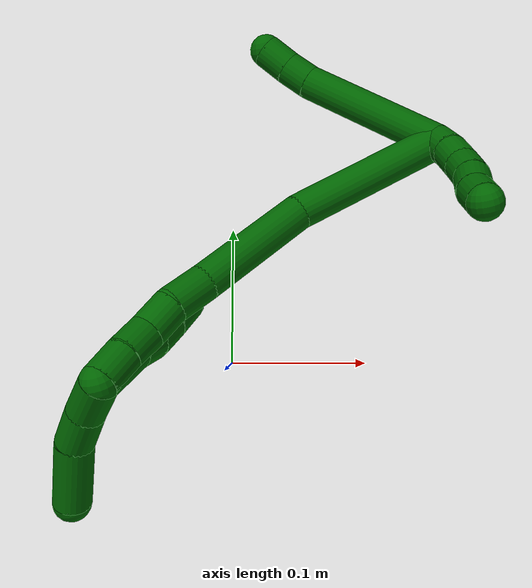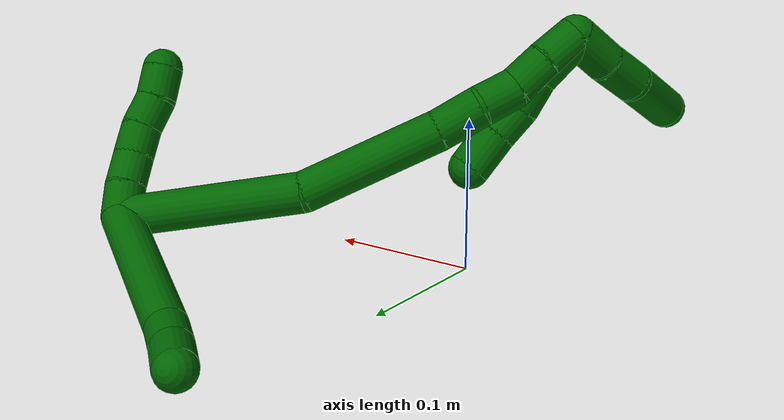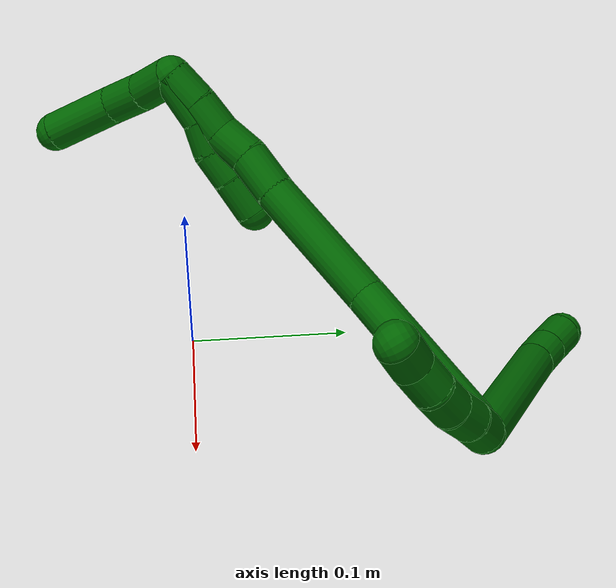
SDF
<sdf version="1.7">
 <world name="default">
  <model name="6">
   <static>0</static>
   <link name="6">
    <collision name="collision-cylinder-e_1_2_8">
     <pose>-0.045663 0.010166 0.026984 -0.360291 -1.00756 0.200105</pose>
     <geometry><cylinder><radius>0.0125</radius><length>0.108011</length></cylinder></geometry>
     <surface>
      <friction><ode><mu>1.16</mu><mu2>1.16</mu2><slip1>0</slip1><slip2>0</slip2></ode></friction>
      <contact><ode><kp>1e+06</kp><kd>1</kd><max_vel>0</max_vel><min_depth>0.001</min_depth></ode></contact>
     </surface>
    </collision>
    <visual name="visual-cylinder-e_1_2_8">
     <pose>-0.045663 0.010166 0.026984 -0.360291 -1.00756 0.200105</pose>
     <geometry><cylinder><radius>0.0125</radius><length>0.108011</length></cylinder></geometry>
     <material><ambient>0 0.392157 0.003922 1</ambient></material>
    </visual>
    <collision name="collision-cylinder-e_2_8_9">
     <pose>-0.098868 0.021739 0.060472 -0.213063 -0.847689 0.096423</pose>
     <geometry><cylinder><radius>0.0125</radius><length>0.020116</length></cylinder></geometry>
     <surface>
      <friction><ode><mu>1.16</mu><mu2>1.16</mu2><slip1>0</slip1><slip2>0</slip2></ode></friction>
      <contact><ode><kp>1e+06</kp><kd>1</kd><max_vel>0</max_vel><min_depth>0.001</min_depth></ode></contact>
     </surface>
    </collision>
    <visual name="visual-cylinder-e_2_8_9">
     <pose>-0.098868 0.021739 0.060472 -0.213063 -0.847689 0.096423</pose>
     <geometry><cylinder><radius>0.0125</radius><length>0.020116</length></cylinder></geometry>
     <material><ambient>0 0.392157 0.003922 1</ambient></material>
    </visual>
    <collision name="collision-cylinder-e_3_9_6">
     <pose>-0.11407 0.024546 0.074655 -0.180334 -0.776182 0.073892</pose>
     <geometry><cylinder><radius>0.0125</radius><length>0.021873</length></cylinder></geometry>
     <surface>
      <friction><ode><mu>1.16</mu><mu2>1.16</mu2><slip1>0</slip1><slip2>0</slip2></ode></friction>
      <contact><ode><kp>1e+06</kp><kd>1</kd><max_vel>0</max_vel><min_depth>0.001</min_depth></ode></contact>
     </surface>
    </collision>
    <visual name="visual-cylinder-e_3_9_6">
     <pose>-0.11407 0.024546 0.074655 -0.180334 -0.776182 0.073892</pose>
     <geometry><cylinder><radius>0.0125</radius><length>0.021873</length></cylinder></geometry>
     <material><ambient>0 0.392157 0.003922 1</ambient></material>
    </visual>
    <collision name="collision-cylinder-e_1_2_10">
     <pose>0.005779 -0.007888 -0.002092 1.83001 0.616188 0.784377</pose>
     <geometry><cylinder><radius>0.0125</radius><length>0.02</length></cylinder></geometry>
     <surface>
      <friction><ode><mu>1.16</mu><mu2>1.16</mu2><slip1>0</slip1><slip2>0</slip2></ode></friction>
      <contact><ode><kp>1e+06</kp><kd>1</kd><max_vel>0</max_vel><min_depth>0.001</min_depth></ode></contact>
     </surface>
    </collision>
    <visual name="visual-cylinder-e_1_2_10">
     <pose>0.005779 -0.007888 -0.002092 1.83001 0.616188 0.784377</pose>
     <geometry><cylinder><radius>0.0125</radius><length>0.02</length></cylinder></geometry>
     <material><ambient>0 0.392157 0.003922 1</ambient></material>
    </visual>
    <collision name="collision-cylinder-e_2_10_11">
     <pose>0.016498 -0.023916 -0.007243 1.9303 0.516591 0.728976</pose>
     <geometry><cylinder><radius>0.0125</radius><length>0.02</length></cylinder></geometry>
     <surface>
      <friction><ode><mu>1.16</mu><mu2>1.16</mu2><slip1>0</slip1><slip2>0</slip2></ode></friction>
      <contact><ode><kp>1e+06</kp><kd>1</kd><max_vel>0</max_vel><min_depth>0.001</min_depth></ode></contact>
     </surface>
    </collision>
    <visual name="visual-cylinder-e_2_10_11">
     <pose>0.016498 -0.023916 -0.007243 1.9303 0.516591 0.728976</pose>
     <geometry><cylinder><radius>0.0125</radius><length>0.02</length></cylinder></geometry>
     <material><ambient>0 0.392157 0.003922 1</ambient></material>
    </visual>
    <collision name="collision-cylinder-e_3_11_12">
     <pose>0.025632 -0.040943 -0.012149 1.7757 0.432845 0.5279</pose>
     <geometry><cylinder><radius>0.0125</radius><length>0.02</length></cylinder></geometry>
     <surface>
      <friction><ode><mu>1.16</mu><mu2>1.16</mu2><slip1>0</slip1><slip2>0</slip2></ode></friction>
      <contact><ode><kp>1e+06</kp><kd>1</kd><max_vel>0</max_vel><min_depth>0.001</min_depth></ode></contact>
     </surface>
    </collision>
    <visual name="visual-cylinder-e_3_11_12">
     <pose>0.025632 -0.040943 -0.012149 1.7757 0.432845 0.5279</pose>
     <geometry><cylinder><radius>0.0125</radius><length>0.02</length></cylinder></geometry>
     <material><ambient>0 0.392157 0.003922 1</ambient></material>
    </visual>
    <collision name="collision-cylinder-e_4_12_13">
     <pose>0.031901 -0.059461 -0.015716 1.74761 0.208985 0.24925</pose>
     <geometry><cylinder><radius>0.0125</radius><length>0.02</length></cylinder></geometry>
     <surface>
      <friction><ode><mu>1.16</mu><mu2>1.16</mu2><slip1>0</slip1><slip2>0</slip2></ode></friction>
      <contact><ode><kp>1e+06</kp><kd>1</kd><max_vel>0</max_vel><min_depth>0.001</min_depth></ode></contact>
     </surface>
    </collision>
    <visual name="visual-cylinder-e_4_12_13">
     <pose>0.031901 -0.059461 -0.015716 1.74761 0.208985 0.24925</pose>
     <geometry><cylinder><radius>0.0125</radius><length>0.02</length></cylinder></geometry>
     <material><ambient>0 0.392157 0.003922 1</ambient></material>
    </visual>
    <collision name="collision-cylinder-e_5_13_5">
     <pose>0.038191 -0.078113 -0.018345 1.67113 0.435181 0.479528</pose>
     <geometry><cylinder><radius>0.0125</radius><length>0.02</length></cylinder></geometry>
     <surface>
      <friction><ode><mu>1.16</mu><mu2>1.16</mu2><slip1>0</slip1><slip2>0</slip2></ode></friction>
      <contact><ode><kp>1e+06</kp><kd>1</kd><max_vel>0</max_vel><min_depth>0.001</min_depth></ode></contact>
     </surface>
    </collision>
    <visual name="visual-cylinder-e_5_13_5">
     <pose>0.038191 -0.078113 -0.018345 1.67113 0.435181 0.479528</pose>
     <geometry><cylinder><radius>0.0125</radius><length>0.02</length></cylinder></geometry>
     <material><ambient>0 0.392157 0.003922 1</ambient></material>
    </visual>
    <collision name="collision-cylinder-e_1_2_14">
     <pose>-0.043155 -0.036799 -0.008079 1.78691 -0.853094 -1.02864</pose>
     <geometry><cylinder><radius>0.0125</radius><length>0.114574</length></cylinder></geometry>
     <surface>
      <friction><ode><mu>1.16</mu><mu2>1.16</mu2><slip1>0</slip1><slip2>0</slip2></ode></friction>
      <contact><ode><kp>1e+06</kp><kd>1</kd><max_vel>0</max_vel><min_depth>0.001</min_depth></ode></contact>
     </surface>
    </collision>
    <visual name="visual-cylinder-e_1_2_14">
     <pose>-0.043155 -0.036799 -0.008079 1.78691 -0.853094 -1.02864</pose>
     <geometry><cylinder><radius>0.0125</radius><length>0.114574</length></cylinder></geometry>
     <material><ambient>0 0.392157 0.003922 1</ambient></material>
    </visual>
    <collision name="collision-cylinder-e_2_14_15">
     <pose>-0.108742 -0.110054 -0.024101 1.78531 -0.541287 -0.663369</pose>
     <geometry><cylinder><radius>0.0125</radius><length>0.087072</length></cylinder></geometry>
     <surface>
      <friction><ode><mu>1.16</mu><mu2>1.16</mu2><slip1>0</slip1><slip2>0</slip2></ode></friction>
      <contact><ode><kp>1e+06</kp><kd>1</kd><max_vel>0</max_vel><min_depth>0.001</min_depth></ode></contact>
     </surface>
    </collision>
    <visual name="visual-cylinder-e_2_14_15">
     <pose>-0.108742 -0.110054 -0.024101 1.78531 -0.541287 -0.663369</pose>
     <geometry><cylinder><radius>0.0125</radius><length>0.087072</length></cylinder></geometry>
     <material><ambient>0 0.392157 0.003922 1</ambient></material>
    </visual>
    <collision name="collision-cylinder-e_3_15_16">
     <pose>-0.137577 -0.159006 -0.033606 1.69517 -0.470461 -0.530213</pose>
     <geometry><cylinder><radius>0.0125</radius><length>0.028252</length></cylinder></geometry>
     <surface>
      <friction><ode><mu>1.16</mu><mu2>1.16</mu2><slip1>0</slip1><slip2>0</slip2></ode></friction>
      <contact><ode><kp>1e+06</kp><kd>1</kd><max_vel>0</max_vel><min_depth>0.001</min_depth></ode></contact>
     </surface>
    </collision>
    <visual name="visual-cylinder-e_3_15_16">
     <pose>-0.137577 -0.159006 -0.033606 1.69517 -0.470461 -0.530213</pose>
     <geometry><cylinder><radius>0.0125</radius><length>0.028252</length></cylinder></geometry>
     <material><ambient>0 0.392157 0.003922 1</ambient></material>
    </visual>
    <collision name="collision-cylinder-e_4_16_17">
     <pose>-0.148854 -0.181462 -0.038996 1.93768 -0.428351 -0.613239</pose>
     <geometry><cylinder><radius>0.0125</radius><length>0.023464</length></cylinder></geometry>
     <surface>
      <friction><ode><mu>1.16</mu><mu2>1.16</mu2><slip1>0</slip1><slip2>0</slip2></ode></friction>
      <contact><ode><kp>1e+06</kp><kd>1</kd><max_vel>0</max_vel><min_depth>0.001</min_depth></ode></contact>
     </surface>
    </collision>
    <visual name="visual-cylinder-e_4_16_17">
     <pose>-0.148854 -0.181462 -0.038996 1.93768 -0.428351 -0.613239</pose>
     <geometry><cylinder><radius>0.0125</radius><length>0.023464</length></cylinder></geometry>
     <material><ambient>0 0.392157 0.003922 1</ambient></material>
    </visual>
    <collision name="collision-cylinder-e_5_17_18">
     <pose>-0.156288 -0.202502 -0.044436 1.71529 -0.224893 -0.259617</pose>
     <geometry><cylinder><radius>0.0125</radius><length>0.022968</length></cylinder></geometry>
     <surface>
      <friction><ode><mu>1.16</mu><mu2>1.16</mu2><slip1>0</slip1><slip2>0</slip2></ode></friction>
      <contact><ode><kp>1e+06</kp><kd>1</kd><max_vel>0</max_vel><min_depth>0.001</min_depth></ode></contact>
     </surface>
    </collision>
    <visual name="visual-cylinder-e_5_17_18">
     <pose>-0.156288 -0.202502 -0.044436 1.71529 -0.224893 -0.259617</pose>
     <geometry><cylinder><radius>0.0125</radius><length>0.022968</length></cylinder></geometry>
     <material><ambient>0 0.392157 0.003922 1</ambient></material>
    </visual>
    <collision name="collision-cylinder-e_6_18_1">
     <pose>-0.161758 -0.22474 -0.048706 1.80459 -0.24838 -0.31351</pose>
     <geometry><cylinder><radius>0.0125</radius><length>0.023669</length></cylinder></geometry>
     <surface>
      <friction><ode><mu>1.16</mu><mu2>1.16</mu2><slip1>0</slip1><slip2>0</slip2></ode></friction>
      <contact><ode><kp>1e+06</kp><kd>1</kd><max_vel>0</max_vel><min_depth>0.001</min_depth></ode></contact>
     </surface>
    </collision>
    <visual name="visual-cylinder-e_6_18_1">
     <pose>-0.161758 -0.22474 -0.048706 1.80459 -0.24838 -0.31351</pose>
     <geometry><cylinder><radius>0.0125</radius><length>0.023669</length></cylinder></geometry>
     <material><ambient>0 0.392157 0.003922 1</ambient></material>
    </visual>
    <collision name="collision-cylinder-e_1_1_19">
     <pose>-0.173723 -0.234971 -0.061615 -3.05129 -0.72148 2.9032</pose>
     <geometry><cylinder><radius>0.0125</radius><length>0.027421</length></cylinder></geometry>
     <surface>
      <friction><ode><mu>1.16</mu><mu2>1.16</mu2><slip1>0</slip1><slip2>0</slip2></ode></friction>
      <contact><ode><kp>1e+06</kp><kd>1</kd><max_vel>0</max_vel><min_depth>0.001</min_depth></ode></contact>
     </surface>
    </collision>
    <visual name="visual-cylinder-e_1_1_19">
     <pose>-0.173723 -0.234971 -0.061615 -3.05129 -0.72148 2.9032</pose>
     <geometry><cylinder><radius>0.0125</radius><length>0.027421</length></cylinder></geometry>
     <material><ambient>0 0.392157 0.003922 1</ambient></material>
    </visual>
    <collision name="collision-cylinder-e_2_19_20">
     <pose>-0.190699 -0.234249 -0.082507 3.12221 -0.639853 -3.0831</pose>
     <geometry><cylinder><radius>0.0125</radius><length>0.026531</length></cylinder></geometry>
     <surface>
      <friction><ode><mu>1.16</mu><mu2>1.16</mu2><slip1>0</slip1><slip2>0</slip2></ode></friction>
      <contact><ode><kp>1e+06</kp><kd>1</kd><max_vel>0</max_vel><min_depth>0.001</min_depth></ode></contact>
     </surface>
    </collision>
    <visual name="visual-cylinder-e_2_19_20">
     <pose>-0.190699 -0.234249 -0.082507 3.12221 -0.639853 -3.0831</pose>
     <geometry><cylinder><radius>0.0125</radius><length>0.026531</length></cylinder></geometry>
     <material><ambient>0 0.392157 0.003922 1</ambient></material>
    </visual>
    <collision name="collision-cylinder-e_3_20_4">
     <pose>-0.206924 -0.235253 -0.114606 3.10441 -0.368994 -2.943</pose>
     <geometry><cylinder><radius>0.0125</radius><length>0.046049</length></cylinder></geometry>
     <surface>
      <friction><ode><mu>1.16</mu><mu2>1.16</mu2><slip1>0</slip1><slip2>0</slip2></ode></friction>
      <contact><ode><kp>1e+06</kp><kd>1</kd><max_vel>0</max_vel><min_depth>0.001</min_depth></ode></contact>
     </surface>
    </collision>
    <visual name="visual-cylinder-e_3_20_4">
     <pose>-0.206924 -0.235253 -0.114606 3.10441 -0.368994 -2.943</pose>
     <geometry><cylinder><radius>0.0125</radius><length>0.046049</length></cylinder></geometry>
     <material><ambient>0 0.392157 0.003922 1</ambient></material>
    </visual>
    <collision name="collision-cylinder-e_1_1_21">
     <pose>-0.161675 -0.219637 -0.050097 -1.49311 0.181445 -0.167935</pose>
     <geometry><cylinder><radius>0.0125</radius><length>0.033167</length></cylinder></geometry>
     <surface>
      <friction><ode><mu>1.16</mu><mu2>1.16</mu2><slip1>0</slip1><slip2>0</slip2></ode></friction>
      <contact><ode><kp>1e+06</kp><kd>1</kd><max_vel>0</max_vel><min_depth>0.001</min_depth></ode></contact>
     </surface>
    </collision>
    <visual name="visual-cylinder-e_1_1_21">
     <pose>-0.161675 -0.219637 -0.050097 -1.49311 0.181445 -0.167935</pose>
     <geometry><cylinder><radius>0.0125</radius><length>0.033167</length></cylinder></geometry>
     <material><ambient>0 0.392157 0.003922 1</ambient></material>
    </visual>
    <collision name="collision-cylinder-e_2_21_22">
     <pose>-0.158439 -0.193164 -0.050913 -1.77189 0.02336 -0.028602</pose>
     <geometry><cylinder><radius>0.0125</radius><length>0.020849</length></cylinder></geometry>
     <surface>
      <friction><ode><mu>1.16</mu><mu2>1.16</mu2><slip1>0</slip1><slip2>0</slip2></ode></friction>
      <contact><ode><kp>1e+06</kp><kd>1</kd><max_vel>0</max_vel><min_depth>0.001</min_depth></ode></contact>
     </surface>
    </collision>
    <visual name="visual-cylinder-e_2_21_22">
     <pose>-0.158439 -0.193164 -0.050913 -1.77189 0.02336 -0.028602</pose>
     <geometry><cylinder><radius>0.0125</radius><length>0.020849</length></cylinder></geometry>
     <material><ambient>0 0.392157 0.003922 1</ambient></material>
    </visual>
    <collision name="collision-cylinder-e_3_22_23">
     <pose>-0.156862 -0.172912 -0.052014 -1.47342 0.13142 -0.119238</pose>
     <geometry><cylinder><radius>0.0125</radius><length>0.020352</length></cylinder></geometry>
     <surface>
      <friction><ode><mu>1.16</mu><mu2>1.16</mu2><slip1>0</slip1><slip2>0</slip2></ode></friction>
      <contact><ode><kp>1e+06</kp><kd>1</kd><max_vel>0</max_vel><min_depth>0.001</min_depth></ode></contact>
     </surface>
    </collision>
    <visual name="visual-cylinder-e_3_22_23">
     <pose>-0.156862 -0.172912 -0.052014 -1.47342 0.13142 -0.119238</pose>
     <geometry><cylinder><radius>0.0125</radius><length>0.020352</length></cylinder></geometry>
     <material><ambient>0 0.392157 0.003922 1</ambient></material>
    </visual>
    <collision name="collision-cylinder-e_4_23_3">
     <pose>-0.154752 -0.150122 -0.049981 -1.48846 0.060605 -0.055812</pose>
     <geometry><cylinder><radius>0.0125</radius><length>0.025632</length></cylinder></geometry>
     <surface>
      <friction><ode><mu>1.16</mu><mu2>1.16</mu2><slip1>0</slip1><slip2>0</slip2></ode></friction>
      <contact><ode><kp>1e+06</kp><kd>1</kd><max_vel>0</max_vel><min_depth>0.001</min_depth></ode></contact>
     </surface>
    </collision>
    <visual name="visual-cylinder-e_4_23_3">
     <pose>-0.154752 -0.150122 -0.049981 -1.48846 0.060605 -0.055812</pose>
     <geometry><cylinder><radius>0.0125</radius><length>0.025632</length></cylinder></geometry>
     <material><ambient>0 0.392157 0.003922 1</ambient></material>
    </visual>
    <collision name="collision-sphere-3">
     <pose>-0.153976 -0.137373 -0.048929 0 -0 0</pose>
     <geometry><sphere><radius>0.0125</radius></sphere></geometry>
     <surface>
      <friction><ode><mu>1.16</mu><mu2>1.16</mu2><slip1>0</slip1><slip2>0</slip2></ode></friction>
      <contact><ode><kp>1e+06</kp><kd>1</kd><max_vel>0</max_vel><min_depth>0.001</min_depth></ode></contact>
     </surface>
    </collision>
    <visual name="visual-sphere-3">
     <pose>-0.153976 -0.137373 -0.048929 0 -0 0</pose>
     <geometry><sphere><radius>0.0125</radius></sphere></geometry>
     <material><ambient>0 0.392157 0.003922 1</ambient></material>
    </visual>
    <collision name="collision-sphere-23">
     <pose>-0.155529 -0.162871 -0.051033 0 -0 0</pose>
     <geometry><sphere><radius>0.0125</radius></sphere></geometry>
     <surface>
      <friction><ode><mu>1.16</mu><mu2>1.16</mu2><slip1>0</slip1><slip2>0</slip2></ode></friction>
      <contact><ode><kp>1e+06</kp><kd>1</kd><max_vel>0</max_vel><min_depth>0.001</min_depth></ode></contact>
     </surface>
    </collision>
    <visual name="visual-sphere-23">
     <pose>-0.155529 -0.162871 -0.051033 0 -0 0</pose>
     <geometry><sphere><radius>0.0125</radius></sphere></geometry>
     <material><ambient>0 0.392157 0.003922 1</ambient></material>
    </visual>
    <collision name="collision-sphere-22">
     <pose>-0.158195 -0.182952 -0.052995 0 -0 0</pose>
     <geometry><sphere><radius>0.0125</radius></sphere></geometry>
     <surface>
      <friction><ode><mu>1.16</mu><mu2>1.16</mu2><slip1>0</slip1><slip2>0</slip2></ode></friction>
      <contact><ode><kp>1e+06</kp><kd>1</kd><max_vel>0</max_vel><min_depth>0.001</min_depth></ode></contact>
     </surface>
    </collision>
    <visual name="visual-sphere-22">
     <pose>-0.158195 -0.182952 -0.052995 0 -0 0</pose>
     <geometry><sphere><radius>0.0125</radius></sphere></geometry>
     <material><ambient>0 0.392157 0.003922 1</ambient></material>
    </visual>
    <collision name="collision-sphere-21">
     <pose>-0.158682 -0.203375 -0.048831 0 -0 0</pose>
     <geometry><sphere><radius>0.0125</radius></sphere></geometry>
     <surface>
      <friction><ode><mu>1.16</mu><mu2>1.16</mu2><slip1>0</slip1><slip2>0</slip2></ode></friction>
      <contact><ode><kp>1e+06</kp><kd>1</kd><max_vel>0</max_vel><min_depth>0.001</min_depth></ode></contact>
     </surface>
    </collision>
    <visual name="visual-sphere-21">
     <pose>-0.158682 -0.203375 -0.048831 0 -0 0</pose>
     <geometry><sphere><radius>0.0125</radius></sphere></geometry>
     <material><ambient>0 0.392157 0.003922 1</ambient></material>
    </visual>
    <collision name="collision-sphere-4">
     <pose>-0.215228 -0.236052 -0.136065 0 -0 0</pose>
     <geometry><sphere><radius>0.0125</radius></sphere></geometry>
     <surface>
      <friction><ode><mu>1.16</mu><mu2>1.16</mu2><slip1>0</slip1><slip2>0</slip2></ode></friction>
      <contact><ode><kp>1e+06</kp><kd>1</kd><max_vel>0</max_vel><min_depth>0.001</min_depth></ode></contact>
     </surface>
    </collision>
    <visual name="visual-sphere-4">
     <pose>-0.215228 -0.236052 -0.136065 0 -0 0</pose>
     <geometry><sphere><radius>0.0125</radius></sphere></geometry>
     <material><ambient>0 0.392157 0.003922 1</ambient></material>
    </visual>
    <collision name="collision-sphere-20">
     <pose>-0.198619 -0.234455 -0.093146 0 -0 0</pose>
     <geometry><sphere><radius>0.0125</radius></sphere></geometry>
     <surface>
      <friction><ode><mu>1.16</mu><mu2>1.16</mu2><slip1>0</slip1><slip2>0</slip2></ode></friction>
      <contact><ode><kp>1e+06</kp><kd>1</kd><max_vel>0</max_vel><min_depth>0.001</min_depth></ode></contact>
     </surface>
    </collision>
    <visual name="visual-sphere-20">
     <pose>-0.198619 -0.234455 -0.093146 0 -0 0</pose>
     <geometry><sphere><radius>0.0125</radius></sphere></geometry>
     <material><ambient>0 0.392157 0.003922 1</ambient></material>
    </visual>
    <collision name="collision-sphere-11">
     <pose>0.021437 -0.032055 -0.010302 0 -0 0</pose>
     <geometry><sphere><radius>0.0125</radius></sphere></geometry>
     <surface>
      <friction><ode><mu>1.16</mu><mu2>1.16</mu2><slip1>0</slip1><slip2>0</slip2></ode></friction>
      <contact><ode><kp>1e+06</kp><kd>1</kd><max_vel>0</max_vel><min_depth>0.001</min_depth></ode></contact>
     </surface>
    </collision>
    <visual name="visual-sphere-11">
     <pose>0.021437 -0.032055 -0.010302 0 -0 0</pose>
     <geometry><sphere><radius>0.0125</radius></sphere></geometry>
     <material><ambient>0 0.392157 0.003922 1</ambient></material>
    </visual>
    <collision name="collision-sphere-10">
     <pose>0.011559 -0.015776 -0.004184 0 -0 0</pose>
     <geometry><sphere><radius>0.0125</radius></sphere></geometry>
     <surface>
      <friction><ode><mu>1.16</mu><mu2>1.16</mu2><slip1>0</slip1><slip2>0</slip2></ode></friction>
      <contact><ode><kp>1e+06</kp><kd>1</kd><max_vel>0</max_vel><min_depth>0.001</min_depth></ode></contact>
     </surface>
    </collision>
    <visual name="visual-sphere-10">
     <pose>0.011559 -0.015776 -0.004184 0 -0 0</pose>
     <geometry><sphere><radius>0.0125</radius></sphere></geometry>
     <material><ambient>0 0.392157 0.003922 1</ambient></material>
    </visual>
    <collision name="collision-sphere-6">
     <pose>-0.121732 0.025946 0.082333 0 -0 0</pose>
     <geometry><sphere><radius>0.0125</radius></sphere></geometry>
     <surface>
      <friction><ode><mu>1.16</mu><mu2>1.16</mu2><slip1>0</slip1><slip2>0</slip2></ode></friction>
      <contact><ode><kp>1e+06</kp><kd>1</kd><max_vel>0</max_vel><min_depth>0.001</min_depth></ode></contact>
     </surface>
    </collision>
    <visual name="visual-sphere-6">
     <pose>-0.121732 0.025946 0.082333 0 -0 0</pose>
     <geometry><sphere><radius>0.0125</radius></sphere></geometry>
     <material><ambient>0 0.392157 0.003922 1</ambient></material>
    </visual>
    <collision name="collision-sphere-9">
     <pose>-0.106408 0.023146 0.066977 0 -0 0</pose>
     <geometry><sphere><radius>0.0125</radius></sphere></geometry>
     <surface>
      <friction><ode><mu>1.16</mu><mu2>1.16</mu2><slip1>0</slip1><slip2>0</slip2></ode></friction>
      <contact><ode><kp>1e+06</kp><kd>1</kd><max_vel>0</max_vel><min_depth>0.001</min_depth></ode></contact>
     </surface>
    </collision>
    <visual name="visual-sphere-9">
     <pose>-0.106408 0.023146 0.066977 0 -0 0</pose>
     <geometry><sphere><radius>0.0125</radius></sphere></geometry>
     <material><ambient>0 0.392157 0.003922 1</ambient></material>
    </visual>
    <collision name="collision-sphere-2">
     <geometry><sphere><radius>0.0125</radius></sphere></geometry>
     <surface>
      <friction><ode><mu>1.16</mu><mu2>1.16</mu2><slip1>0</slip1><slip2>0</slip2></ode></friction>
      <contact><ode><kp>1e+06</kp><kd>1</kd><max_vel>0</max_vel><min_depth>0.001</min_depth></ode></contact>
     </surface>
    </collision>
    <visual name="visual-sphere-2">
     <geometry><sphere><radius>0.0125</radius></sphere></geometry>
     <material><ambient>0 0.392157 0.003922 1</ambient></material>
    </visual>
    <collision name="collision-sphere-19">
     <pose>-0.182779 -0.234043 -0.071867 0 -0 0</pose>
     <geometry><sphere><radius>0.0125</radius></sphere></geometry>
     <surface>
      <friction><ode><mu>1.16</mu><mu2>1.16</mu2><slip1>0</slip1><slip2>0</slip2></ode></friction>
      <contact><ode><kp>1e+06</kp><kd>1</kd><max_vel>0</max_vel><min_depth>0.001</min_depth></ode></contact>
     </surface>
    </collision>
    <visual name="visual-sphere-19">
     <pose>-0.182779 -0.234043 -0.071867 0 -0 0</pose>
     <geometry><sphere><radius>0.0125</radius></sphere></geometry>
     <material><ambient>0 0.392157 0.003922 1</ambient></material>
    </visual>
    <collision name="collision-sphere-8">
     <pose>-0.091327 0.020332 0.053968 0 -0 0</pose>
     <geometry><sphere><radius>0.0125</radius></sphere></geometry>
     <surface>
      <friction><ode><mu>1.16</mu><mu2>1.16</mu2><slip1>0</slip1><slip2>0</slip2></ode></friction>
      <contact><ode><kp>1e+06</kp><kd>1</kd><max_vel>0</max_vel><min_depth>0.001</min_depth></ode></contact>
     </surface>
    </collision>
    <visual name="visual-sphere-8">
     <pose>-0.091327 0.020332 0.053968 0 -0 0</pose>
     <geometry><sphere><radius>0.0125</radius></sphere></geometry>
     <material><ambient>0 0.392157 0.003922 1</ambient></material>
    </visual>
    <collision name="collision-sphere-12">
     <pose>0.029826 -0.049831 -0.013996 0 -0 0</pose>
     <geometry><sphere><radius>0.0125</radius></sphere></geometry>
     <surface>
      <friction><ode><mu>1.16</mu><mu2>1.16</mu2><slip1>0</slip1><slip2>0</slip2></ode></friction>
      <contact><ode><kp>1e+06</kp><kd>1</kd><max_vel>0</max_vel><min_depth>0.001</min_depth></ode></contact>
     </surface>
    </collision>
    <visual name="visual-sphere-12">
     <pose>0.029826 -0.049831 -0.013996 0 -0 0</pose>
     <geometry><sphere><radius>0.0125</radius></sphere></geometry>
     <material><ambient>0 0.392157 0.003922 1</ambient></material>
    </visual>
    <collision name="collision-sphere-13">
     <pose>0.033975 -0.06909 -0.017437 0 -0 0</pose>
     <geometry><sphere><radius>0.0125</radius></sphere></geometry>
     <surface>
      <friction><ode><mu>1.16</mu><mu2>1.16</mu2><slip1>0</slip1><slip2>0</slip2></ode></friction>
      <contact><ode><kp>1e+06</kp><kd>1</kd><max_vel>0</max_vel><min_depth>0.001</min_depth></ode></contact>
     </surface>
    </collision>
    <visual name="visual-sphere-13">
     <pose>0.033975 -0.06909 -0.017437 0 -0 0</pose>
     <geometry><sphere><radius>0.0125</radius></sphere></geometry>
     <material><ambient>0 0.392157 0.003922 1</ambient></material>
    </visual>
    <collision name="collision-sphere-5">
     <pose>0.042407 -0.087135 -0.019254 0 -0 0</pose>
     <geometry><sphere><radius>0.0125</radius></sphere></geometry>
     <surface>
      <friction><ode><mu>1.16</mu><mu2>1.16</mu2><slip1>0</slip1><slip2>0</slip2></ode></friction>
      <contact><ode><kp>1e+06</kp><kd>1</kd><max_vel>0</max_vel><min_depth>0.001</min_depth></ode></contact>
     </surface>
    </collision>
    <visual name="visual-sphere-5">
     <pose>0.042407 -0.087135 -0.019254 0 -0 0</pose>
     <geometry><sphere><radius>0.0125</radius></sphere></geometry>
     <material><ambient>0 0.392157 0.003922 1</ambient></material>
    </visual>
    <collision name="collision-sphere-14">
     <pose>-0.086311 -0.073598 -0.016158 0 -0 0</pose>
     <geometry><sphere><radius>0.0125</radius></sphere></geometry>
     <surface>
      <friction><ode><mu>1.16</mu><mu2>1.16</mu2><slip1>0</slip1><slip2>0</slip2></ode></friction>
      <contact><ode><kp>1e+06</kp><kd>1</kd><max_vel>0</max_vel><min_depth>0.001</min_depth></ode></contact>
     </surface>
    </collision>
    <visual name="visual-sphere-14">
     <pose>-0.086311 -0.073598 -0.016158 0 -0 0</pose>
     <geometry><sphere><radius>0.0125</radius></sphere></geometry>
     <material><ambient>0 0.392157 0.003922 1</ambient></material>
    </visual>
    <collision name="collision-sphere-15">
     <pose>-0.131174 -0.146511 -0.032044 0 -0 0</pose>
     <geometry><sphere><radius>0.0125</radius></sphere></geometry>
     <surface>
      <friction><ode><mu>1.16</mu><mu2>1.16</mu2><slip1>0</slip1><slip2>0</slip2></ode></friction>
      <contact><ode><kp>1e+06</kp><kd>1</kd><max_vel>0</max_vel><min_depth>0.001</min_depth></ode></contact>
     </surface>
    </collision>
    <visual name="visual-sphere-15">
     <pose>-0.131174 -0.146511 -0.032044 0 -0 0</pose>
     <geometry><sphere><radius>0.0125</radius></sphere></geometry>
     <material><ambient>0 0.392157 0.003922 1</ambient></material>
    </visual>
    <collision name="collision-sphere-16">
     <pose>-0.14398 -0.1715 -0.035168 0 -0 0</pose>
     <geometry><sphere><radius>0.0125</radius></sphere></geometry>
     <surface>
      <friction><ode><mu>1.16</mu><mu2>1.16</mu2><slip1>0</slip1><slip2>0</slip2></ode></friction>
      <contact><ode><kp>1e+06</kp><kd>1</kd><max_vel>0</max_vel><min_depth>0.001</min_depth></ode></contact>
     </surface>
    </collision>
    <visual name="visual-sphere-16">
     <pose>-0.14398 -0.1715 -0.035168 0 -0 0</pose>
     <geometry><sphere><radius>0.0125</radius></sphere></geometry>
     <material><ambient>0 0.392157 0.003922 1</ambient></material>
    </visual>
    <collision name="collision-sphere-17">
     <pose>-0.153727 -0.191424 -0.042824 0 -0 0</pose>
     <geometry><sphere><radius>0.0125</radius></sphere></geometry>
     <surface>
      <friction><ode><mu>1.16</mu><mu2>1.16</mu2><slip1>0</slip1><slip2>0</slip2></ode></friction>
      <contact><ode><kp>1e+06</kp><kd>1</kd><max_vel>0</max_vel><min_depth>0.001</min_depth></ode></contact>
     </surface>
    </collision>
    <visual name="visual-sphere-17">
     <pose>-0.153727 -0.191424 -0.042824 0 -0 0</pose>
     <geometry><sphere><radius>0.0125</radius></sphere></geometry>
     <material><ambient>0 0.392157 0.003922 1</ambient></material>
    </visual>
    <collision name="collision-sphere-18">
     <pose>-0.158849 -0.213581 -0.046048 0 -0 0</pose>
     <geometry><sphere><radius>0.0125</radius></sphere></geometry>
     <surface>
      <friction><ode><mu>1.16</mu><mu2>1.16</mu2><slip1>0</slip1><slip2>0</slip2></ode></friction>
      <contact><ode><kp>1e+06</kp><kd>1</kd><max_vel>0</max_vel><min_depth>0.001</min_depth></ode></contact>
     </surface>
    </collision>
    <visual name="visual-sphere-18">
     <pose>-0.158849 -0.213581 -0.046048 0 -0 0</pose>
     <geometry><sphere><radius>0.0125</radius></sphere></geometry>
     <material><ambient>0 0.392157 0.003922 1</ambient></material>
    </visual>
    <collision name="collision-sphere-1">
     <pose>-0.164667 -0.235899 -0.051363 0 -0 0</pose>
     <geometry><sphere><radius>0.0125</radius></sphere></geometry>
     <surface>
      <friction><ode><mu>1.16</mu><mu2>1.16</mu2><slip1>0</slip1><slip2>0</slip2></ode></friction>
      <contact><ode><kp>1e+06</kp><kd>1</kd><max_vel>0</max_vel><min_depth>0.001</min_depth></ode></contact>
     </surface>
    </collision>
    <visual name="visual-sphere-1">
     <pose>-0.164667 -0.235899 -0.051363 0 -0 0</pose>
     <geometry><sphere><radius>0.0125</radius></sphere></geometry>
     <material><ambient>0 0.392157 0.003922 1</ambient></material>
    </visual>
    <inertial>
     <pose>-0.095257 -0.102431 -0.02217 0 -0 0</pose>
     <mass>0.75</mass>
     <inertia><ixx>3.5e-05</ixx><ixy>0</ixy><ixz>0</ixz><iyy>9.1e-05</iyy><iyz>0</iyz><izz>0.000339</izz></inertia>
    </inertial>
   </link>
   <pose>0.146971 0.159982 0.049189 -1.12753 -0.411657 0.073061</pose>
  </model>
 </world>
</sdf>
